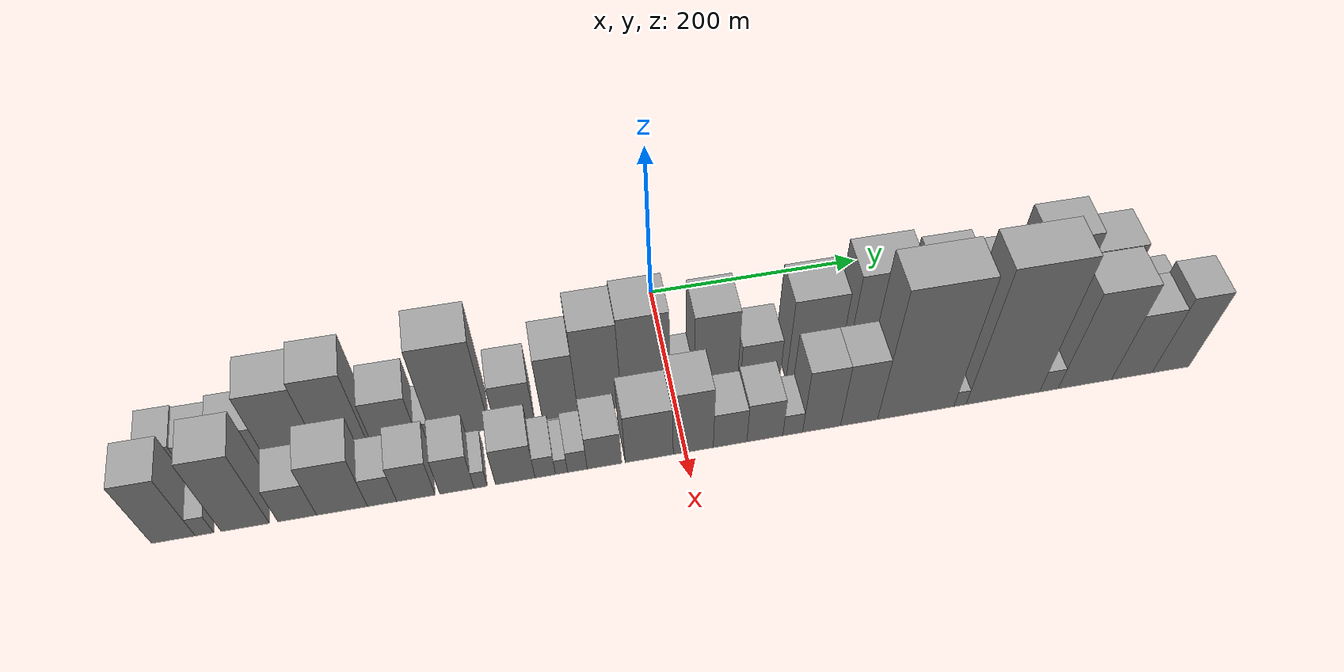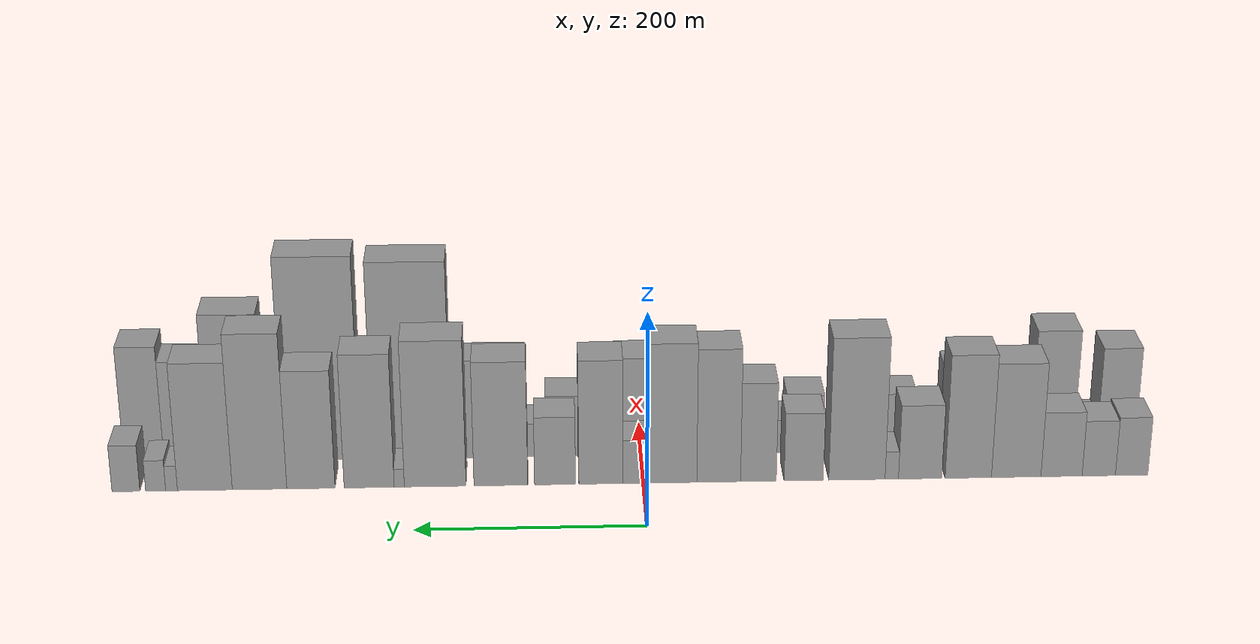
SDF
<sdf version="1.6">
 <world name="default">
  <scene>
   <sky><clouds><speed>12</speed></clouds></sky>
   <ambient>0.4 0.4 0.4 1</ambient>
   <background>0.7 0.7 0.7 1</background>
   <shadows>1</shadows>
  </scene>
  <gravity>0 0 -9.8066</gravity>
  <magnetic_field>6e-06 2.3e-05 -4.2e-05</magnetic_field>
  <physics default="0" name="default_physics" type="ode">
   <ode>
    <solver>
     <type>quick</type>
     <iters>10</iters>
     <sor>1.0</sor>
     <use_dynamic_moi_rescaling>0</use_dynamic_moi_rescaling>
    </solver>
    <constraints>
     <cfm>0</cfm>
     <erp>0.2</erp>
     <contact_max_correcting_vel>100</contact_max_correcting_vel>
     <contact_surface_layer>0.001</contact_surface_layer>
    </constraints>
   </ode>
   <max_step_size>0.004</max_step_size>
   <real_time_factor>1</real_time_factor>
   <real_time_update_rate>250</real_time_update_rate>
  </physics>
  <light name="sun" type="directional">
   <pose>0 0 10 0 0 0</pose>
   <diffuse>0.8 0.8 0.8 1</diffuse>
   <specular>0.2 0.2 0.2 1</specular>
   <attenuation>
    <range>1000</range>
    <constant>0.9</constant>
    <linear>0.01</linear>
    <quadratic>0.001</quadratic>
   </attenuation>
   <direction>-0.5 0.1 -0.9</direction>
  </light>
  <model name="building_1">
   <static>1</static>
   <pose>100.0000 -435.4611 0 0.000000 0.000000 0.000000</pose>
   <link name="link">
    <pose>0 0 28.50 0 0 0</pose>
    <collision name="collision"><geometry><box><size>40.0000 29.0777 57.0000</size></box></geometry></collision>
    <visual name="visual">
     <cast_shadows>0</cast_shadows>
     <geometry><box><size>40.0000 29.0777 57.0000</size></box></geometry>
     <material>
      <script>
       <uri>model://grey_wall/materials/scripts</uri>
       <uri>model://grey_wall/materials/textures</uri>
       <name>vrc/grey_wall</name>
      </script>
     </material>
    </visual>
   </link>
  </model>
  <model name="building_2">
   <static>1</static>
   <pose>100.0000 -405.9652 0 0.000000 0.000000 0.000000</pose>
   <link name="link">
    <pose>0 0 27.00 0 0 0</pose>
    <collision name="collision"><geometry><box><size>40.0000 29.9142 54.0000</size></box></geometry></collision>
    <visual name="visual">
     <cast_shadows>0</cast_shadows>
     <geometry><box><size>40.0000 29.9142 54.0000</size></box></geometry>
     <material>
      <script>
       <uri>model://grey_wall/materials/scripts</uri>
       <uri>model://grey_wall/materials/textures</uri>
       <name>vrc/grey_wall</name>
      </script>
     </material>
    </visual>
   </link>
  </model>
  <model name="building_3">
   <static>1</static>
   <pose>100.0000 -372.5697 0 0.000000 0.000000 0.000000</pose>
   <link name="link">
    <pose>0 0 31.50 0 0 0</pose>
    <collision name="collision"><geometry><box><size>40.0000 36.8767 63.0000</size></box></geometry></collision>
    <visual name="visual">
     <cast_shadows>0</cast_shadows>
     <geometry><box><size>40.0000 36.8767 63.0000</size></box></geometry>
     <material>
      <script>
       <uri>model://grey_wall/materials/scripts</uri>
       <uri>model://grey_wall/materials/textures</uri>
       <name>vrc/grey_wall</name>
      </script>
     </material>
    </visual>
   </link>
  </model>
  <model name="building_4">
   <static>1</static>
   <pose>100.0000 -331.9615 0 0.000000 0.000000 0.000000</pose>
   <link name="link">
    <pose>0 0 55.50 0 0 0</pose>
    <collision name="collision"><geometry><box><size>40.0000 44.3397 111.0000</size></box></geometry></collision>
    <visual name="visual">
     <cast_shadows>0</cast_shadows>
     <geometry><box><size>40.0000 44.3397 111.0000</size></box></geometry>
     <material>
      <script>
       <uri>model://grey_wall/materials/scripts</uri>
       <uri>model://grey_wall/materials/textures</uri>
       <name>vrc/grey_wall</name>
      </script>
     </material>
    </visual>
   </link>
  </model>
  <model name="building_5">
   <static>1</static>
   <pose>100.0000 -289.1052 0 0.000000 0.000000 0.000000</pose>
   <link name="link">
    <pose>0 0 60.00 0 0 0</pose>
    <collision name="collision"><geometry><box><size>40.0000 41.3730 120.0000</size></box></geometry></collision>
    <visual name="visual">
     <cast_shadows>0</cast_shadows>
     <geometry><box><size>40.0000 41.3730 120.0000</size></box></geometry>
     <material>
      <script>
       <uri>model://grey_wall/materials/scripts</uri>
       <uri>model://grey_wall/materials/textures</uri>
       <name>vrc/grey_wall</name>
      </script>
     </material>
    </visual>
   </link>
  </model>
  <model name="building_6">
   <static>1</static>
   <pose>100.0000 -246.0872 0 0.000000 0.000000 0.000000</pose>
   <link name="link">
    <pose>0 0 36.00 0 0 0</pose>
    <collision name="collision"><geometry><box><size>40.0000 38.6629 72.0000</size></box></geometry></collision>
    <visual name="visual">
     <cast_shadows>0</cast_shadows>
     <geometry><box><size>40.0000 38.6629 72.0000</size></box></geometry>
     <material>
      <script>
       <uri>model://grey_wall/materials/scripts</uri>
       <uri>model://grey_wall/materials/textures</uri>
       <name>vrc/grey_wall</name>
      </script>
     </material>
    </visual>
   </link>
  </model>
  <model name="building_7">
   <static>1</static>
   <pose>100.0000 -220.7456 0 0.000000 0.000000 0.000000</pose>
   <link name="link">
    <pose>0 0 13.50 0 0 0</pose>
    <collision name="collision"><geometry><box><size>40.0000 12.0203 27.0000</size></box></geometry></collision>
    <visual name="visual">
     <cast_shadows>0</cast_shadows>
     <geometry><box><size>40.0000 12.0203 27.0000</size></box></geometry>
     <material>
      <script>
       <uri>model://grey_wall/materials/scripts</uri>
       <uri>model://grey_wall/materials/textures</uri>
       <name>vrc/grey_wall</name>
      </script>
     </material>
    </visual>
   </link>
  </model>
  <model name="building_8">
   <static>1</static>
   <pose>100.0000 -189.6394 0 0.000000 0.000000 0.000000</pose>
   <link name="link">
    <pose>0 0 69.00 0 0 0</pose>
    <collision name="collision"><geometry><box><size>40.0000 50.1922 138.0000</size></box></geometry></collision>
    <visual name="visual">
     <cast_shadows>0</cast_shadows>
     <geometry><box><size>40.0000 50.1922 138.0000</size></box></geometry>
     <material>
      <script>
       <uri>model://grey_wall/materials/scripts</uri>
       <uri>model://grey_wall/materials/textures</uri>
       <name>vrc/grey_wall</name>
      </script>
     </material>
    </visual>
   </link>
  </model>
  <model name="building_9">
   <static>1</static>
   <pose>100.0000 -142.1717 0 0.000000 0.000000 0.000000</pose>
   <link name="link">
    <pose>0 0 33.00 0 0 0</pose>
    <collision name="collision"><geometry><box><size>40.0000 34.7432 66.0000</size></box></geometry></collision>
    <visual name="visual">
     <cast_shadows>0</cast_shadows>
     <geometry><box><size>40.0000 34.7432 66.0000</size></box></geometry>
     <material>
      <script>
       <uri>model://grey_wall/materials/scripts</uri>
       <uri>model://grey_wall/materials/textures</uri>
       <name>vrc/grey_wall</name>
      </script>
     </material>
    </visual>
   </link>
  </model>
  <model name="building_10">
   <static>1</static>
   <pose>100.0000 -101.9353 0 0.000000 0.000000 0.000000</pose>
   <link name="link">
    <pose>0 0 48.00 0 0 0</pose>
    <collision name="collision"><geometry><box><size>40.0000 31.7297 96.0000</size></box></geometry></collision>
    <visual name="visual">
     <cast_shadows>0</cast_shadows>
     <geometry><box><size>40.0000 31.7297 96.0000</size></box></geometry>
     <material>
      <script>
       <uri>model://grey_wall/materials/scripts</uri>
       <uri>model://grey_wall/materials/textures</uri>
       <name>vrc/grey_wall</name>
      </script>
     </material>
    </visual>
   </link>
  </model>
  <model name="building_11">
   <static>1</static>
   <pose>100.0000 -66.6433 0 0.000000 0.000000 0.000000</pose>
   <link name="link">
    <pose>0 0 64.50 0 0 0</pose>
    <collision name="collision"><geometry><box><size>40.0000 38.8544 129.0000</size></box></geometry></collision>
    <visual name="visual">
     <cast_shadows>0</cast_shadows>
     <geometry><box><size>40.0000 38.8544 129.0000</size></box></geometry>
     <material>
      <script>
       <uri>model://grey_wall/materials/scripts</uri>
       <uri>model://grey_wall/materials/textures</uri>
       <name>vrc/grey_wall</name>
      </script>
     </material>
    </visual>
   </link>
  </model>
  <model name="building_12">
   <static>1</static>
   <pose>100.0000 -25.1831 0 0.000000 0.000000 0.000000</pose>
   <link name="link">
    <pose>0 0 67.50 0 0 0</pose>
    <collision name="collision"><geometry><box><size>40.0000 44.0659 135.0000</size></box></geometry></collision>
    <visual name="visual">
     <cast_shadows>0</cast_shadows>
     <geometry><box><size>40.0000 44.0659 135.0000</size></box></geometry>
     <material>
      <script>
       <uri>model://grey_wall/materials/scripts</uri>
       <uri>model://grey_wall/materials/textures</uri>
       <name>vrc/grey_wall</name>
      </script>
     </material>
    </visual>
   </link>
  </model>
  <model name="building_13">
   <static>1</static>
   <pose>100.0000 7.6032 0 0.000000 0.000000 0.000000</pose>
   <link name="link">
    <pose>0 0 21.00 0 0 0</pose>
    <collision name="collision"><geometry><box><size>40.0000 21.5066 42.0000</size></box></geometry></collision>
    <visual name="visual">
     <cast_shadows>0</cast_shadows>
     <geometry><box><size>40.0000 21.5066 42.0000</size></box></geometry>
     <material>
      <script>
       <uri>model://grey_wall/materials/scripts</uri>
       <uri>model://grey_wall/materials/textures</uri>
       <name>vrc/grey_wall</name>
      </script>
     </material>
    </visual>
   </link>
  </model>
  <model name="building_14">
   <static>1</static>
   <pose>100.0000 37.8639 0 0.000000 0.000000 0.000000</pose>
   <link name="link">
    <pose>0 0 60.00 0 0 0</pose>
    <collision name="collision"><geometry><box><size>40.0000 39.0148 120.0000</size></box></geometry></collision>
    <visual name="visual">
     <cast_shadows>0</cast_shadows>
     <geometry><box><size>40.0000 39.0148 120.0000</size></box></geometry>
     <material>
      <script>
       <uri>model://grey_wall/materials/scripts</uri>
       <uri>model://grey_wall/materials/textures</uri>
       <name>vrc/grey_wall</name>
      </script>
     </material>
    </visual>
   </link>
  </model>
  <model name="building_15">
   <static>1</static>
   <pose>100.0000 78.4808 0 0.000000 0.000000 0.000000</pose>
   <link name="link">
    <pose>0 0 33.00 0 0 0</pose>
    <collision name="collision"><geometry><box><size>40.0000 36.2191 66.0000</size></box></geometry></collision>
    <visual name="visual">
     <cast_shadows>0</cast_shadows>
     <geometry><box><size>40.0000 36.2191 66.0000</size></box></geometry>
     <material>
      <script>
       <uri>model://grey_wall/materials/scripts</uri>
       <uri>model://grey_wall/materials/textures</uri>
       <name>vrc/grey_wall</name>
      </script>
     </material>
    </visual>
   </link>
  </model>
  <model name="building_16">
   <static>1</static>
   <pose>100.0000 126.3896 0 0.000000 0.000000 0.000000</pose>
   <link name="link">
    <pose>0 0 60.00 0 0 0</pose>
    <collision name="collision"><geometry><box><size>40.0000 47.5985 120.0000</size></box></geometry></collision>
    <visual name="visual">
     <cast_shadows>0</cast_shadows>
     <geometry><box><size>40.0000 47.5985 120.0000</size></box></geometry>
     <material>
      <script>
       <uri>model://grey_wall/materials/scripts</uri>
       <uri>model://grey_wall/materials/textures</uri>
       <name>vrc/grey_wall</name>
      </script>
     </material>
    </visual>
   </link>
  </model>
  <model name="building_17">
   <static>1</static>
   <pose>100.0000 184.4302 0 0.000000 0.000000 0.000000</pose>
   <link name="link">
    <pose>0 0 70.50 0 0 0</pose>
    <collision name="collision"><geometry><box><size>40.0000 54.4828 141.0000</size></box></geometry></collision>
    <visual name="visual">
     <cast_shadows>0</cast_shadows>
     <geometry><box><size>40.0000 54.4828 141.0000</size></box></geometry>
     <material>
      <script>
       <uri>model://grey_wall/materials/scripts</uri>
       <uri>model://grey_wall/materials/textures</uri>
       <name>vrc/grey_wall</name>
      </script>
     </material>
    </visual>
   </link>
  </model>
  <model name="building_18">
   <static>1</static>
   <pose>100.0000 216.1353 0 0.000000 0.000000 0.000000</pose>
   <link name="link">
    <pose>0 0 9.00 0 0 0</pose>
    <collision name="collision"><geometry><box><size>40.0000 8.9274 18.0000</size></box></geometry></collision>
    <visual name="visual">
     <cast_shadows>0</cast_shadows>
     <geometry><box><size>40.0000 8.9274 18.0000</size></box></geometry>
     <material>
      <script>
       <uri>model://grey_wall/materials/scripts</uri>
       <uri>model://grey_wall/materials/textures</uri>
       <name>vrc/grey_wall</name>
      </script>
     </material>
    </visual>
   </link>
  </model>
  <model name="building_19">
   <static>1</static>
   <pose>100.0000 242.6383 0 0.000000 0.000000 0.000000</pose>
   <link name="link">
    <pose>0 0 64.50 0 0 0</pose>
    <collision name="collision"><geometry><box><size>40.0000 44.0785 129.0000</size></box></geometry></collision>
    <visual name="visual">
     <cast_shadows>0</cast_shadows>
     <geometry><box><size>40.0000 44.0785 129.0000</size></box></geometry>
     <material>
      <script>
       <uri>model://grey_wall/materials/scripts</uri>
       <uri>model://grey_wall/materials/textures</uri>
       <name>vrc/grey_wall</name>
      </script>
     </material>
    </visual>
   </link>
  </model>
  <model name="building_20">
   <static>1</static>
   <pose>100.0000 293.8822 0 0.000000 0.000000 0.000000</pose>
   <link name="link">
    <pose>0 0 57.00 0 0 0</pose>
    <collision name="collision"><geometry><box><size>40.0000 42.4092 114.0000</size></box></geometry></collision>
    <visual name="visual">
     <cast_shadows>0</cast_shadows>
     <geometry><box><size>40.0000 42.4092 114.0000</size></box></geometry>
     <material>
      <script>
       <uri>model://grey_wall/materials/scripts</uri>
       <uri>model://grey_wall/materials/textures</uri>
       <name>vrc/grey_wall</name>
      </script>
     </material>
    </visual>
   </link>
  </model>
  <model name="building_21">
   <static>1</static>
   <pose>100.0000 339.0525 0 0.000000 0.000000 0.000000</pose>
   <link name="link">
    <pose>0 0 75.00 0 0 0</pose>
    <collision name="collision"><geometry><box><size>40.0000 47.9314 150.0000</size></box></geometry></collision>
    <visual name="visual">
     <cast_shadows>0</cast_shadows>
     <geometry><box><size>40.0000 47.9314 150.0000</size></box></geometry>
     <material>
      <script>
       <uri>model://grey_wall/materials/scripts</uri>
       <uri>model://grey_wall/materials/textures</uri>
       <name>vrc/grey_wall</name>
      </script>
     </material>
    </visual>
   </link>
  </model>
  <model name="building_22">
   <static>1</static>
   <pose>100.0000 387.0779 0 0.000000 0.000000 0.000000</pose>
   <link name="link">
    <pose>0 0 61.50 0 0 0</pose>
    <collision name="collision"><geometry><box><size>40.0000 48.1196 123.0000</size></box></geometry></collision>
    <visual name="visual">
     <cast_shadows>0</cast_shadows>
     <geometry><box><size>40.0000 48.1196 123.0000</size></box></geometry>
     <material>
      <script>
       <uri>model://grey_wall/materials/scripts</uri>
       <uri>model://grey_wall/materials/textures</uri>
       <name>vrc/grey_wall</name>
      </script>
     </material>
    </visual>
   </link>
  </model>
  <model name="building_23">
   <static>1</static>
   <pose>100.0000 416.3030 0 0.000000 0.000000 0.000000</pose>
   <link name="link">
    <pose>0 0 12.00 0 0 0</pose>
    <collision name="collision"><geometry><box><size>40.0000 10.3305 24.0000</size></box></geometry></collision>
    <visual name="visual">
     <cast_shadows>0</cast_shadows>
     <geometry><box><size>40.0000 10.3305 24.0000</size></box></geometry>
     <material>
      <script>
       <uri>model://grey_wall/materials/scripts</uri>
       <uri>model://grey_wall/materials/textures</uri>
       <name>vrc/grey_wall</name>
      </script>
     </material>
    </visual>
   </link>
  </model>
  <model name="building_24">
   <static>1</static>
   <pose>100.0000 430.2368 0 0.000000 0.000000 0.000000</pose>
   <link name="link">
    <pose>0 0 15.00 0 0 0</pose>
    <collision name="collision"><geometry><box><size>40.0000 17.5370 30.0000</size></box></geometry></collision>
    <visual name="visual">
     <cast_shadows>0</cast_shadows>
     <geometry><box><size>40.0000 17.5370 30.0000</size></box></geometry>
     <material>
      <script>
       <uri>model://grey_wall/materials/scripts</uri>
       <uri>model://grey_wall/materials/textures</uri>
       <name>vrc/grey_wall</name>
      </script>
     </material>
    </visual>
   </link>
  </model>
  <model name="building_25">
   <static>1</static>
   <pose>100.0000 456.2579 0 0.000000 0.000000 0.000000</pose>
   <link name="link">
    <pose>0 0 22.50 0 0 0</pose>
    <collision name="collision"><geometry><box><size>40.0000 24.5053 45.0000</size></box></geometry></collision>
    <visual name="visual">
     <cast_shadows>0</cast_shadows>
     <geometry><box><size>40.0000 24.5053 45.0000</size></box></geometry>
     <material>
      <script>
       <uri>model://grey_wall/materials/scripts</uri>
       <uri>model://grey_wall/materials/textures</uri>
       <name>vrc/grey_wall</name>
      </script>
     </material>
    </visual>
   </link>
  </model>
  <model name="building_26">
   <static>1</static>
   <pose>155.0000 -432.3813 0 0.000000 0.000000 0.000000</pose>
   <link name="link">
    <pose>0 0 49.50 0 0 0</pose>
    <collision name="collision"><geometry><box><size>40.0000 35.2374 99.0000</size></box></geometry></collision>
    <visual name="visual">
     <cast_shadows>0</cast_shadows>
     <geometry><box><size>40.0000 35.2374 99.0000</size></box></geometry>
     <material>
      <script>
       <uri>model://grey_wall/materials/scripts</uri>
       <uri>model://grey_wall/materials/textures</uri>
       <name>vrc/grey_wall</name>
      </script>
     </material>
    </visual>
   </link>
  </model>
  <model name="building_27">
   <static>1</static>
   <pose>155.0000 -407.2251 0 0.000000 0.000000 0.000000</pose>
   <link name="link">
    <pose>0 0 15.00 0 0 0</pose>
    <collision name="collision"><geometry><box><size>40.0000 15.0749 30.0000</size></box></geometry></collision>
    <visual name="visual">
     <cast_shadows>0</cast_shadows>
     <geometry><box><size>40.0000 15.0749 30.0000</size></box></geometry>
     <material>
      <script>
       <uri>model://grey_wall/materials/scripts</uri>
       <uri>model://grey_wall/materials/textures</uri>
       <name>vrc/grey_wall</name>
      </script>
     </material>
    </visual>
   </link>
  </model>
  <model name="building_28">
   <static>1</static>
   <pose>155.0000 -373.9745 0 0.000000 0.000000 0.000000</pose>
   <link name="link">
    <pose>0 0 58.50 0 0 0</pose>
    <collision name="collision"><geometry><box><size>40.0000 39.4264 117.0000</size></box></geometry></collision>
    <visual name="visual">
     <cast_shadows>0</cast_shadows>
     <geometry><box><size>40.0000 39.4264 117.0000</size></box></geometry>
     <material>
      <script>
       <uri>model://grey_wall/materials/scripts</uri>
       <uri>model://grey_wall/materials/textures</uri>
       <name>vrc/grey_wall</name>
      </script>
     </material>
    </visual>
   </link>
  </model>
  <model name="building_29">
   <static>1</static>
   <pose>155.0000 -331.3084 0 0.000000 0.000000 0.000000</pose>
   <link name="link">
    <pose>0 0 27.00 0 0 0</pose>
    <collision name="collision"><geometry><box><size>40.0000 31.9059 54.0000</size></box></geometry></collision>
    <visual name="visual">
     <cast_shadows>0</cast_shadows>
     <geometry><box><size>40.0000 31.9059 54.0000</size></box></geometry>
     <material>
      <script>
       <uri>model://grey_wall/materials/scripts</uri>
       <uri>model://grey_wall/materials/textures</uri>
       <name>vrc/grey_wall</name>
      </script>
     </material>
    </visual>
   </link>
  </model>
  <model name="building_30">
   <static>1</static>
   <pose>155.0000 -294.2171 0 0.000000 0.000000 0.000000</pose>
   <link name="link">
    <pose>0 0 40.50 0 0 0</pose>
    <collision name="collision"><geometry><box><size>40.0000 42.2767 81.0000</size></box></geometry></collision>
    <visual name="visual">
     <cast_shadows>0</cast_shadows>
     <geometry><box><size>40.0000 42.2767 81.0000</size></box></geometry>
     <material>
      <script>
       <uri>model://grey_wall/materials/scripts</uri>
       <uri>model://grey_wall/materials/textures</uri>
       <name>vrc/grey_wall</name>
      </script>
     </material>
    </visual>
   </link>
  </model>
  <model name="building_31">
   <static>1</static>
   <pose>155.0000 -260.8670 0 0.000000 0.000000 0.000000</pose>
   <link name="link">
    <pose>0 0 22.50 0 0 0</pose>
    <collision name="collision"><geometry><box><size>40.0000 24.4234 45.0000</size></box></geometry></collision>
    <visual name="visual">
     <cast_shadows>0</cast_shadows>
     <geometry><box><size>40.0000 24.4234 45.0000</size></box></geometry>
     <material>
      <script>
       <uri>model://grey_wall/materials/scripts</uri>
       <uri>model://grey_wall/materials/textures</uri>
       <name>vrc/grey_wall</name>
      </script>
     </material>
    </visual>
   </link>
  </model>
  <model name="building_32">
   <static>1</static>
   <pose>155.0000 -232.5107 0 0.000000 0.000000 0.000000</pose>
   <link name="link">
    <pose>0 0 28.50 0 0 0</pose>
    <collision name="collision"><geometry><box><size>40.0000 32.2892 57.0000</size></box></geometry></collision>
    <visual name="visual">
     <cast_shadows>0</cast_shadows>
     <geometry><box><size>40.0000 32.2892 57.0000</size></box></geometry>
     <material>
      <script>
       <uri>model://grey_wall/materials/scripts</uri>
       <uri>model://grey_wall/materials/textures</uri>
       <name>vrc/grey_wall</name>
      </script>
     </material>
    </visual>
   </link>
  </model>
  <model name="building_33">
   <static>1</static>
   <pose>155.0000 -197.8432 0 0.000000 0.000000 0.000000</pose>
   <link name="link">
    <pose>0 0 28.50 0 0 0</pose>
    <collision name="collision"><geometry><box><size>40.0000 29.0459 57.0000</size></box></geometry></collision>
    <visual name="visual">
     <cast_shadows>0</cast_shadows>
     <geometry><box><size>40.0000 29.0459 57.0000</size></box></geometry>
     <material>
      <script>
       <uri>model://grey_wall/materials/scripts</uri>
       <uri>model://grey_wall/materials/textures</uri>
       <name>vrc/grey_wall</name>
      </script>
     </material>
    </visual>
   </link>
  </model>
  <model name="building_34">
   <static>1</static>
   <pose>155.0000 -177.7315 0 0.000000 0.000000 0.000000</pose>
   <link name="link">
    <pose>0 0 13.50 0 0 0</pose>
    <collision name="collision"><geometry><box><size>40.0000 11.1773 27.0000</size></box></geometry></collision>
    <visual name="visual">
     <cast_shadows>0</cast_shadows>
     <geometry><box><size>40.0000 11.1773 27.0000</size></box></geometry>
     <material>
      <script>
       <uri>model://grey_wall/materials/scripts</uri>
       <uri>model://grey_wall/materials/textures</uri>
       <name>vrc/grey_wall</name>
      </script>
     </material>
    </visual>
   </link>
  </model>
  <model name="building_35">
   <static>1</static>
   <pose>155.0000 -148.1930 0 0.000000 0.000000 0.000000</pose>
   <link name="link">
    <pose>0 0 28.50 0 0 0</pose>
    <collision name="collision"><geometry><box><size>40.0000 33.8998 57.0000</size></box></geometry></collision>
    <visual name="visual">
     <cast_shadows>0</cast_shadows>
     <geometry><box><size>40.0000 33.8998 57.0000</size></box></geometry>
     <material>
      <script>
       <uri>model://grey_wall/materials/scripts</uri>
       <uri>model://grey_wall/materials/textures</uri>
       <name>vrc/grey_wall</name>
      </script>
     </material>
    </visual>
   </link>
  </model>
  <model name="building_36">
   <static>1</static>
   <pose>155.0000 -122.4516 0 0.000000 0.000000 0.000000</pose>
   <link name="link">
    <pose>0 0 16.50 0 0 0</pose>
    <collision name="collision"><geometry><box><size>40.0000 17.5828 33.0000</size></box></geometry></collision>
    <visual name="visual">
     <cast_shadows>0</cast_shadows>
     <geometry><box><size>40.0000 17.5828 33.0000</size></box></geometry>
     <material>
      <script>
       <uri>model://grey_wall/materials/scripts</uri>
       <uri>model://grey_wall/materials/textures</uri>
       <name>vrc/grey_wall</name>
      </script>
     </material>
    </visual>
   </link>
  </model>
  <model name="building_37">
   <static>1</static>
   <pose>155.0000 -108.4653 0 0.000000 0.000000 0.000000</pose>
   <link name="link">
    <pose>0 0 12.00 0 0 0</pose>
    <collision name="collision"><geometry><box><size>40.0000 10.3897 24.0000</size></box></geometry></collision>
    <visual name="visual">
     <cast_shadows>0</cast_shadows>
     <geometry><box><size>40.0000 10.3897 24.0000</size></box></geometry>
     <material>
      <script>
       <uri>model://grey_wall/materials/scripts</uri>
       <uri>model://grey_wall/materials/textures</uri>
       <name>vrc/grey_wall</name>
      </script>
     </material>
    </visual>
   </link>
  </model>
  <model name="building_38">
   <static>1</static>
   <pose>155.0000 -94.8098 0 0.000000 0.000000 0.000000</pose>
   <link name="link">
    <pose>0 0 16.50 0 0 0</pose>
    <collision name="collision"><geometry><box><size>40.0000 16.9212 33.0000</size></box></geometry></collision>
    <visual name="visual">
     <cast_shadows>0</cast_shadows>
     <geometry><box><size>40.0000 16.9212 33.0000</size></box></geometry>
     <material>
      <script>
       <uri>model://grey_wall/materials/scripts</uri>
       <uri>model://grey_wall/materials/textures</uri>
       <name>vrc/grey_wall</name>
      </script>
     </material>
    </visual>
   </link>
  </model>
  <model name="building_39">
   <static>1</static>
   <pose>155.0000 -71.2426 0 0.000000 0.000000 0.000000</pose>
   <link name="link">
    <pose>0 0 25.50 0 0 0</pose>
    <collision name="collision"><geometry><box><size>40.0000 30.2132 51.0000</size></box></geometry></collision>
    <visual name="visual">
     <cast_shadows>0</cast_shadows>
     <geometry><box><size>40.0000 30.2132 51.0000</size></box></geometry>
     <material>
      <script>
       <uri>model://grey_wall/materials/scripts</uri>
       <uri>model://grey_wall/materials/textures</uri>
       <name>vrc/grey_wall</name>
      </script>
     </material>
    </visual>
   </link>
  </model>
  <model name="building_40">
   <static>1</static>
   <pose>155.0000 -32.1144 0 0.000000 0.000000 0.000000</pose>
   <link name="link">
    <pose>0 0 37.50 0 0 0</pose>
    <collision name="collision"><geometry><box><size>40.0000 42.0434 75.0000</size></box></geometry></collision>
    <visual name="visual">
     <cast_shadows>0</cast_shadows>
     <geometry><box><size>40.0000 42.0434 75.0000</size></box></geometry>
     <material>
      <script>
       <uri>model://grey_wall/materials/scripts</uri>
       <uri>model://grey_wall/materials/textures</uri>
       <name>vrc/grey_wall</name>
      </script>
     </material>
    </visual>
   </link>
  </model>
  <model name="building_41">
   <static>1</static>
   <pose>155.0000 6.6013 0 0.000000 0.000000 0.000000</pose>
   <link name="link">
    <pose>0 0 48.00 0 0 0</pose>
    <collision name="collision"><geometry><box><size>40.0000 35.3878 96.0000</size></box></geometry></collision>
    <visual name="visual">
     <cast_shadows>0</cast_shadows>
     <geometry><box><size>40.0000 35.3878 96.0000</size></box></geometry>
     <material>
      <script>
       <uri>model://grey_wall/materials/scripts</uri>
       <uri>model://grey_wall/materials/textures</uri>
       <name>vrc/grey_wall</name>
      </script>
     </material>
    </visual>
   </link>
  </model>
  <model name="building_42">
   <static>1</static>
   <pose>155.0000 39.2696 0 0.000000 0.000000 0.000000</pose>
   <link name="link">
    <pose>0 0 27.00 0 0 0</pose>
    <collision name="collision"><geometry><box><size>40.0000 29.9489 54.0000</size></box></geometry></collision>
    <visual name="visual">
     <cast_shadows>0</cast_shadows>
     <geometry><box><size>40.0000 29.9489 54.0000</size></box></geometry>
     <material>
      <script>
       <uri>model://grey_wall/materials/scripts</uri>
       <uri>model://grey_wall/materials/textures</uri>
       <name>vrc/grey_wall</name>
      </script>
     </material>
    </visual>
   </link>
  </model>
  <model name="building_43">
   <static>1</static>
   <pose>155.0000 70.2926 0 0.000000 0.000000 0.000000</pose>
   <link name="link">
    <pose>0 0 30.00 0 0 0</pose>
    <collision name="collision"><geometry><box><size>40.0000 32.0972 60.0000</size></box></geometry></collision>
    <visual name="visual">
     <cast_shadows>0</cast_shadows>
     <geometry><box><size>40.0000 32.0972 60.0000</size></box></geometry>
     <material>
      <script>
       <uri>model://grey_wall/materials/scripts</uri>
       <uri>model://grey_wall/materials/textures</uri>
       <name>vrc/grey_wall</name>
      </script>
     </material>
    </visual>
   </link>
  </model>
  <model name="building_44">
   <static>1</static>
   <pose>155.0000 95.2305 0 0.000000 0.000000 0.000000</pose>
   <link name="link">
    <pose>0 0 16.50 0 0 0</pose>
    <collision name="collision"><geometry><box><size>40.0000 17.7786 33.0000</size></box></geometry></collision>
    <visual name="visual">
     <cast_shadows>0</cast_shadows>
     <geometry><box><size>40.0000 17.7786 33.0000</size></box></geometry>
     <material>
      <script>
       <uri>model://grey_wall/materials/scripts</uri>
       <uri>model://grey_wall/materials/textures</uri>
       <name>vrc/grey_wall</name>
      </script>
     </material>
    </visual>
   </link>
  </model>
  <model name="building_45">
   <static>1</static>
   <pose>155.0000 121.3064 0 0.000000 0.000000 0.000000</pose>
   <link name="link">
    <pose>0 0 48.00 0 0 0</pose>
    <collision name="collision"><geometry><box><size>40.0000 34.3732 96.0000</size></box></geometry></collision>
    <visual name="visual">
     <cast_shadows>0</cast_shadows>
     <geometry><box><size>40.0000 34.3732 96.0000</size></box></geometry>
     <material>
      <script>
       <uri>model://grey_wall/materials/scripts</uri>
       <uri>model://grey_wall/materials/textures</uri>
       <name>vrc/grey_wall</name>
      </script>
     </material>
    </visual>
   </link>
  </model>
  <model name="building_46">
   <static>1</static>
   <pose>155.0000 155.3300 0 0.000000 0.000000 0.000000</pose>
   <link name="link">
    <pose>0 0 48.00 0 0 0</pose>
    <collision name="collision"><geometry><box><size>40.0000 33.6740 96.0000</size></box></geometry></collision>
    <visual name="visual">
     <cast_shadows>0</cast_shadows>
     <geometry><box><size>40.0000 33.6740 96.0000</size></box></geometry>
     <material>
      <script>
       <uri>model://grey_wall/materials/scripts</uri>
       <uri>model://grey_wall/materials/textures</uri>
       <name>vrc/grey_wall</name>
      </script>
     </material>
    </visual>
   </link>
  </model>
  <model name="building_47">
   <static>1</static>
   <pose>155.0000 207.3944 0 0.000000 0.000000 0.000000</pose>
   <link name="link">
    <pose>0 0 96.00 0 0 0</pose>
    <collision name="collision"><geometry><box><size>40.0000 70.4549 192.0000</size></box></geometry></collision>
    <visual name="visual">
     <cast_shadows>0</cast_shadows>
     <geometry><box><size>40.0000 70.4549 192.0000</size></box></geometry>
     <material>
      <script>
       <uri>model://grey_wall/materials/scripts</uri>
       <uri>model://grey_wall/materials/textures</uri>
       <name>vrc/grey_wall</name>
      </script>
     </material>
    </visual>
   </link>
  </model>
  <model name="building_48">
   <static>1</static>
   <pose>155.0000 248.2648 0 0.000000 0.000000 0.000000</pose>
   <link name="link">
    <pose>0 0 12.00 0 0 0</pose>
    <collision name="collision"><geometry><box><size>40.0000 11.2859 24.0000</size></box></geometry></collision>
    <visual name="visual">
     <cast_shadows>0</cast_shadows>
     <geometry><box><size>40.0000 11.2859 24.0000</size></box></geometry>
     <material>
      <script>
       <uri>model://grey_wall/materials/scripts</uri>
       <uri>model://grey_wall/materials/textures</uri>
       <name>vrc/grey_wall</name>
      </script>
     </material>
    </visual>
   </link>
  </model>
  <model name="building_49">
   <static>1</static>
   <pose>155.0000 288.3174 0 0.000000 0.000000 0.000000</pose>
   <link name="link">
    <pose>0 0 99.00 0 0 0</pose>
    <collision name="collision"><geometry><box><size>40.0000 68.8194 198.0000</size></box></geometry></collision>
    <visual name="visual">
     <cast_shadows>0</cast_shadows>
     <geometry><box><size>40.0000 68.8194 198.0000</size></box></geometry>
     <material>
      <script>
       <uri>model://grey_wall/materials/scripts</uri>
       <uri>model://grey_wall/materials/textures</uri>
       <name>vrc/grey_wall</name>
      </script>
     </material>
    </visual>
   </link>
  </model>
  <model name="building_50">
   <static>1</static>
   <pose>155.0000 331.4196 0 0.000000 0.000000 0.000000</pose>
   <link name="link">
    <pose>0 0 16.50 0 0 0</pose>
    <collision name="collision"><geometry><box><size>40.0000 17.3850 33.0000</size></box></geometry></collision>
    <visual name="visual">
     <cast_shadows>0</cast_shadows>
     <geometry><box><size>40.0000 17.3850 33.0000</size></box></geometry>
     <material>
      <script>
       <uri>model://grey_wall/materials/scripts</uri>
       <uri>model://grey_wall/materials/textures</uri>
       <name>vrc/grey_wall</name>
      </script>
     </material>
    </visual>
   </link>
  </model>
  <model name="building_51">
   <static>1</static>
   <pose>155.0000 365.5240 0 0.000000 0.000000 0.000000</pose>
   <link name="link">
    <pose>0 0 72.00 0 0 0</pose>
    <collision name="collision"><geometry><box><size>40.0000 50.8238 144.0000</size></box></geometry></collision>
    <visual name="visual">
     <cast_shadows>0</cast_shadows>
     <geometry><box><size>40.0000 50.8238 144.0000</size></box></geometry>
     <material>
      <script>
       <uri>model://grey_wall/materials/scripts</uri>
       <uri>model://grey_wall/materials/textures</uri>
       <name>vrc/grey_wall</name>
      </script>
     </material>
    </visual>
   </link>
  </model>
  <model name="building_52">
   <static>1</static>
   <pose>155.0000 410.3930 0 0.000000 0.000000 0.000000</pose>
   <link name="link">
    <pose>0 0 49.50 0 0 0</pose>
    <collision name="collision"><geometry><box><size>40.0000 38.9142 99.0000</size></box></geometry></collision>
    <visual name="visual">
     <cast_shadows>0</cast_shadows>
     <geometry><box><size>40.0000 38.9142 99.0000</size></box></geometry>
     <material>
      <script>
       <uri>model://grey_wall/materials/scripts</uri>
       <uri>model://grey_wall/materials/textures</uri>
       <name>vrc/grey_wall</name>
      </script>
     </material>
    </visual>
   </link>
  </model>
  <model name="building_53">
   <static>1</static>
   <pose>155.0000 447.7114 0 0.000000 0.000000 0.000000</pose>
   <link name="link">
    <pose>0 0 57.00 0 0 0</pose>
    <collision name="collision"><geometry><box><size>40.0000 35.7225 114.0000</size></box></geometry></collision>
    <visual name="visual">
     <cast_shadows>0</cast_shadows>
     <geometry><box><size>40.0000 35.7225 114.0000</size></box></geometry>
     <material>
      <script>
       <uri>model://grey_wall/materials/scripts</uri>
       <uri>model://grey_wall/materials/textures</uri>
       <name>vrc/grey_wall</name>
      </script>
     </material>
    </visual>
   </link>
  </model>
 </world>
</sdf>
